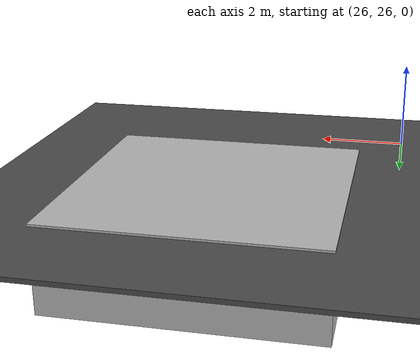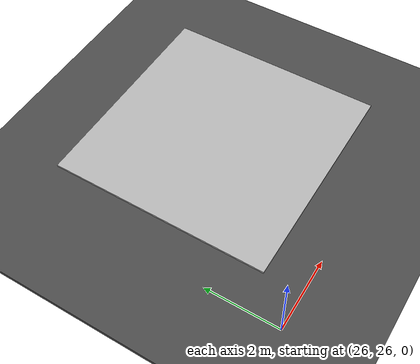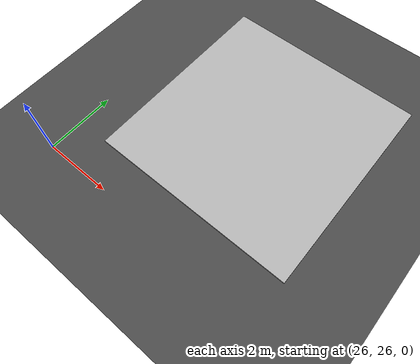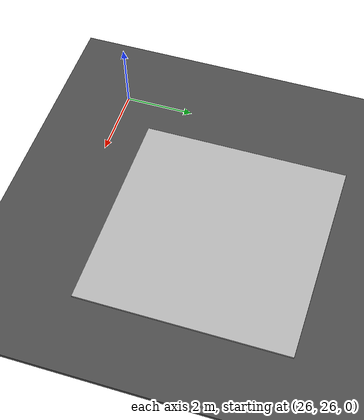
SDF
<sdf version="1.4">
 <world name="default">
  <model name="ground_plane">
   <static>1</static>
   <link name="link">
    <collision name="collision">
     <geometry><plane><normal>0 0 1</normal><size>100 100</size></plane></geometry>
     <surface><friction><ode><mu>100</mu><mu2>50</mu2></ode></friction></surface>
    </collision>
    <visual name="visual">
     <cast_shadows>0</cast_shadows>
     <geometry><plane><normal>0 0 1</normal><size>100 100</size></plane></geometry>
     <material>
      <script><uri>file://media/materials/scripts/gazebo.material</uri><name>Gazebo/Grey</name></script>
     </material>
    </visual>
    <velocity_decay><linear>0</linear><angular>0</angular></velocity_decay>
   </link>
  </model>
  <light name="sun" type="directional">
   <pose>0 0 10 0 -0 0</pose>
   <diffuse>0.8 0.8 0.8 1</diffuse>
   <specular>0.2 0.2 0.2 1</specular>
   <attenuation>
    <range>1000</range>
    <constant>0.9</constant>
    <linear>0.01</linear>
    <quadratic>0.001</quadratic>
   </attenuation>
   <direction>-0.5 0.1 -0.9</direction>
  </light>
  <physics type="ode">
   <max_step_size>0.001</max_step_size>
   <real_time_factor>1</real_time_factor>
   <real_time_update_rate>1000</real_time_update_rate>
   <gravity>0 0 -9.8</gravity>
  </physics>
  <scene><ambient>0.4 0.4 0.4 1</ambient><background>0.7 0.7 0.7 1</background><shadows>1</shadows></scene>
  <spherical_coordinates>
   <surface_model>EARTH_WGS84</surface_model>
   <latitude_deg>0</latitude_deg>
   <longitude_deg>0</longitude_deg>
   <elevation>0</elevation>
   <heading_deg>0</heading_deg>
  </spherical_coordinates>
  <model name="asphalt_plane">
   <static>1</static>
   <link name="link">
    <collision name="collision"><geometry><box><size>200 200 0.1</size></box></geometry></collision>
    <visual name="visual">
     <cast_shadows>0</cast_shadows>
     <geometry><box><size>200 200 0.1</size></box></geometry>
     <material>
      <script>
       <uri>model://asphalt_plane/materials/scripts</uri>
       <uri>model://asphalt_plane/materials/textures</uri>
       <name>vrc/asphalt</name>
      </script>
     </material>
    </visual>
    <velocity_decay><linear>0</linear><angular>0</angular></velocity_decay>
   </link>
  </model>
  <model name="box_target_green">
   <pose>30 30 -0.9 0 -0 -1.5708</pose>
   <static>1</static>
   <link name="link">
    <collision name="collision"><geometry><box><size>6 6 0.1</size></box></geometry></collision>
    <visual name="visual">
     <geometry><mesh><uri>model://box_target_green/meshes/mesh.dae</uri></mesh></geometry>
    </visual>
    <velocity_decay><linear>0</linear><angular>0</angular></velocity_decay>
   </link>
  </model>
 </world>
</sdf>
